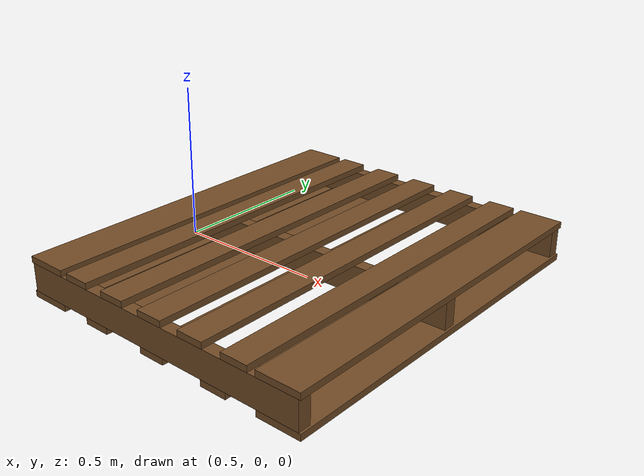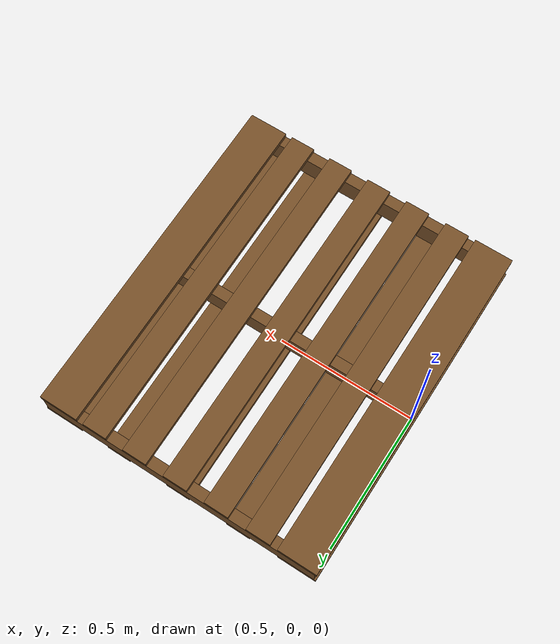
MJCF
<mujoco model="gma_pallet">

  <asset>
    <!-- Corrected wood texture to use a 2D checker pattern with wood colors -->
    <texture name="texwood" type="2d" builtin="checker" width="128" height="128" rgb1="0.6 0.4 0.2" rgb2="0.3 0.2 0.1" />
    <material name="MatWood" texture="texwood" texrepeat="5 5" specular="0.1" shininess="0.1" />
  </asset>

  <worldbody>

    <body name="gma_pallet_free" pos="1 0 0.056" quat="0.7071067 0 0 0.7071067">
      <freejoint name="gma_pallet_freejoint"/>

      <!-- Pallet body -->
      <body name="gma_pallet_body" pos="0 0 0" quat="1 0 0 0">
        <!-- Top Deck Boards -->
        <!-- Lead boards (wider) -->
        <geom name="top_deck_lead_front" type="box" size="0.6096 0.07 0.01" pos="0 0.4445 0.065" material="MatWood" />
        <geom name="top_deck_lead_back"  type="box" size="0.6096 0.07 0.01" pos="0 -0.4445 0.065" material="MatWood" />
        <!-- Inner boards -->
        <geom name="top_deck_inner_1" type="box" size="0.6096 0.044 0.01" pos="0 0.3048 0.065" material="MatWood" />
        <geom name="top_deck_inner_2" type="box" size="0.6096 0.044 0.01" pos="0 0.1524 0.065" material="MatWood" />
        <geom name="top_deck_inner_3" type="box" size="0.6096 0.044 0.01" pos="0 0 0.065" material="MatWood" />
        <geom name="top_deck_inner_4" type="box" size="0.6096 0.044 0.01" pos="0 -0.1524 0.065" material="MatWood" />
        <geom name="top_deck_inner_5" type="box" size="0.6096 0.044 0.01" pos="0 -0.3048 0.065" material="MatWood" />

        <!-- Stringer Boards (the three main supports) -->
        <geom name="stringer_left"   type="box" size="0.02 0.508 0.045" pos="0.5896 0 0.01" material="MatWood" />
        <geom name="stringer_middle" type="box" size="0.02 0.508 0.045" pos="0 0 0.01" material="MatWood" />
        <geom name="stringer_right"  type="box" size="0.02 0.508 0.045" pos="-0.5896 0 0.01" material="MatWood" />

        <!-- Bottom Deck Boards -->
        <!-- Lead boards (wider) -->
        <geom name="bottom_deck_lead_front" type="box" size="0.6096 0.07 0.01" pos="0 0.4445 -0.045" material="MatWood" />
        <geom name="bottom_deck_lead_back"  type="box" size="0.6096 0.07 0.01" pos="0 -0.4445 -0.045" material="MatWood" />
        <!-- Inner boards -->
        <geom name="bottom_deck_inner_1" type="box" size="0.6096 0.044 0.01" pos="0 0.2286 -0.045" material="MatWood" />
        <geom name="bottom_deck_inner_2" type="box" size="0.6096 0.044 0.01" pos="0 0 -0.045" material="MatWood" />
        <geom name="bottom_deck_inner_3" type="box" size="0.6096 0.044 0.01" pos="0 -0.2286 -0.045" material="MatWood" />
      </body>

    </body>
  </worldbody>
</mujoco>
